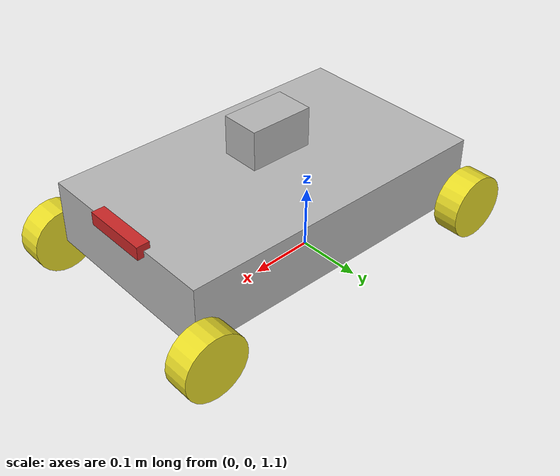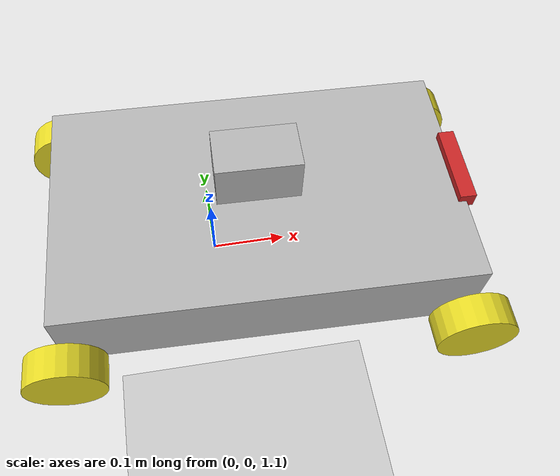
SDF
<sdf version="1.7">
 <world name="default">
  <model name="ground_plane">
   <static>1</static>
   <link name="link">
    <collision name="collision">
     <geometry><plane><normal>0 0 1</normal><size>100 100</size></plane></geometry>
     <surface>
      <contact><collide_bitmask>65535</collide_bitmask></contact>
      <friction><ode><mu>100</mu><mu2>50</mu2></ode></friction>
     </surface>
    </collision>
    <visual name="visual">
     <cast_shadows>0</cast_shadows>
     <geometry><plane><normal>0 0 1</normal><size>100 100</size></plane></geometry>
     <material>
      <script><uri>file://media/materials/scripts/gazebo.material</uri><name>Gazebo/Grey</name></script>
     </material>
    </visual>
   </link>
  </model>
  <gravity>0 0 -9.8</gravity>
  <magnetic_field>6e-06 2.3e-05 -4.2e-05</magnetic_field>
  <atmosphere type="adiabatic"/>
  <physics type="ode">
   <max_step_size>0.001</max_step_size>
   <real_time_factor>1</real_time_factor>
   <real_time_update_rate>1000</real_time_update_rate>
  </physics>
  <scene><ambient>0.4 0.4 0.4 1</ambient><background>0.7 0.7 0.7 1</background><shadows>1</shadows></scene>
  <audio><device>default</device></audio>
  <spherical_coordinates>
   <surface_model>EARTH_WGS84</surface_model>
   <latitude_deg>0</latitude_deg>
   <longitude_deg>0</longitude_deg>
   <elevation>0</elevation>
   <heading_deg>0</heading_deg>
  </spherical_coordinates>
  <light name="user_directional_light_0" type="directional">
   <pose>5.92611 3.87759 1 0 -0 0</pose>
   <diffuse>0.5 0.5 0.5 1</diffuse>
   <specular>0.1 0.1 0.1 1</specular>
   <direction>0.1 0.1 -0.9</direction>
   <attenuation>
    <range>20</range>
    <constant>0.5</constant>
    <linear>0.01</linear>
    <quadratic>0.001</quadratic>
   </attenuation>
   <spot><inner_angle>0</inner_angle><outer_angle>0</outer_angle><falloff>0</falloff></spot>
  </light>
  <light name="user_point_light_0" type="point">
   <pose>7.74204 2.38082 1 0 -0 0</pose>
   <diffuse>0.5 0.5 0.5 1</diffuse>
   <specular>0.1 0.1 0.1 1</specular>
   <attenuation>
    <range>20</range>
    <constant>0.5</constant>
    <linear>0.01</linear>
    <quadratic>0.001</quadratic>
   </attenuation>
   <cast_shadows>0</cast_shadows>
   <direction>0 0 -1</direction>
   <spot><inner_angle>0</inner_angle><outer_angle>0</outer_angle><falloff>0</falloff></spot>
  </light>
  <light name="user_spot_light_0" type="spot">
   <pose>2.4624 1.17686 1 0 -0 0</pose>
   <diffuse>0.5 0.5 0.5 1</diffuse>
   <specular>0.1 0.1 0.1 1</specular>
   <direction>0 0 -1</direction>
   <attenuation>
    <range>20</range>
    <constant>0.5</constant>
    <linear>0.01</linear>
    <quadratic>0.001</quadratic>
   </attenuation>
   <cast_shadows>0</cast_shadows>
   <spot><inner_angle>0.6</inner_angle><outer_angle>1</outer_angle><falloff>1</falloff></spot>
  </light>
  <light name="user_spot_light_1" type="spot">
   <pose>12.1106 6.3566 1 0 -0 0</pose>
   <diffuse>0.5 0.5 0.5 1</diffuse>
   <specular>0.1 0.1 0.1 1</specular>
   <direction>0 0 -1</direction>
   <attenuation>
    <range>20</range>
    <constant>0.5</constant>
    <linear>0.01</linear>
    <quadratic>0.001</quadratic>
   </attenuation>
   <cast_shadows>0</cast_shadows>
   <spot><inner_angle>0.6</inner_angle><outer_angle>1</outer_angle><falloff>1</falloff></spot>
  </light>
  <light name="user_spot_light_2" type="spot">
   <pose>7.29605 3.79652 1 0 -0 0</pose>
   <diffuse>0.5 0.5 0.5 1</diffuse>
   <specular>0.1 0.1 0.1 1</specular>
   <direction>0 0 -1</direction>
   <attenuation>
    <range>20</range>
    <constant>0.5</constant>
    <linear>0.01</linear>
    <quadratic>0.001</quadratic>
   </attenuation>
   <cast_shadows>0</cast_shadows>
   <spot><inner_angle>0.6</inner_angle><outer_angle>1</outer_angle><falloff>1</falloff></spot>
  </light>
  <model name="robot">
   <link name="base_link">
    <inertial>
     <pose>0.02 0 0.0128 0 -0 0</pose>
     <mass>1.25</mass>
     <inertia>
      <ixx>0.0231319</ixx>
      <ixy>1.51081e-20</ixy>
      <ixz>-0.00093</ixz>
      <iyy>0.0353519</iyy>
      <iyz>4.27978e-36</iyz>
      <izz>0.0146167</izz>
     </inertia>
    </inertial>
    <collision name="base_link_collision"><geometry><box><size>0.5 0.3 0.1</size></box></geometry></collision>
    <collision name="base_link_fixed_joint_lump__camera_link_collision_1">
     <pose>0.25 0 0.05 0 -0 0</pose>
     <geometry><box><size>0.02 0.1 0.02</size></box></geometry>
    </collision>
    <collision name="base_link_fixed_joint_lump__imu_link_collision_2">
     <pose>0 0 0.02 0 -0 0</pose>
     <geometry><box><size>0.02 0.02 0.02</size></box></geometry>
    </collision>
    <visual name="base_link_visual"><geometry><box><size>0.5 0.3 0.1</size></box></geometry></visual>
    <visual name="base_link_fixed_joint_lump__camera_link_visual_1">
     <pose>0.25 0 0.05 0 -0 0</pose>
     <geometry><box><size>0.02 0.1 0.02</size></box></geometry>
     <material>
      <script><name>Gazebo/Red</name><uri>file://media/materials/scripts/gazebo.material</uri></script>
     </material>
    </visual>
    <visual name="base_link_fixed_joint_lump__imu_link_visual_2">
     <pose>0 0 0.02 0 -0 0</pose>
     <geometry><box><size>0.02 0.02 0.02</size></box></geometry>
     <material>
      <script><name>Gazebo/Black</name><uri>file://media/materials/scripts/gazebo.material</uri></script>
     </material>
    </visual>
    <visual name="base_link_fixed_joint_lump__livox_link_visual_3">
     <pose>0 0 0.1 0 -0 0</pose>
     <geometry><box><size>0.1 0.06 0.06</size></box></geometry>
    </visual>
    <sensor name="imu_sensor" type="imu">
     <plugin name="imu_plugin" filename="libgazebo_ros_imu_sensor.so">
      <ros><namespace>/</namespace><remapping>~/out:=imu_raw</remapping></ros>
      <initial_orientation_as_reference>0</initial_orientation_as_reference>
     </plugin>
     <update_rate>100</update_rate>
     <always_on>1</always_on>
     <imu>
      <angular_velocity>
       <x>
        <noise type="gaussian">
         <mean>0</mean>
         <stddev>0</stddev>
         <bias_mean>0</bias_mean>
         <bias_stddev>0</bias_stddev>
        </noise>
       </x>
       <y>
        <noise type="gaussian">
         <mean>0</mean>
         <stddev>0</stddev>
         <bias_mean>0</bias_mean>
         <bias_stddev>0</bias_stddev>
        </noise>
       </y>
       <z>
        <noise type="gaussian">
         <mean>0</mean>
         <stddev>0</stddev>
         <bias_mean>0</bias_mean>
         <bias_stddev>0</bias_stddev>
        </noise>
       </z>
      </angular_velocity>
      <linear_acceleration>
       <x>
        <noise type="gaussian">
         <mean>0</mean>
         <stddev>0</stddev>
         <bias_mean>0</bias_mean>
         <bias_stddev>0</bias_stddev>
        </noise>
       </x>
       <y>
        <noise type="gaussian">
         <mean>0</mean>
         <stddev>0</stddev>
         <bias_mean>0</bias_mean>
         <bias_stddev>0</bias_stddev>
        </noise>
       </y>
       <z>
        <noise type="gaussian">
         <mean>0</mean>
         <stddev>0</stddev>
         <bias_mean>0</bias_mean>
         <bias_stddev>0</bias_stddev>
        </noise>
       </z>
      </linear_acceleration>
     </imu>
     <pose>0 0 0.02 0 -0 0</pose>
    </sensor>
    <sensor name="livox_link" type="ray">
     <visualize>1</visualize>
     <update_rate>10</update_rate>
     <plugin name="livox_link_plugin" filename="libros2_livox.so">
      <ray>
       <scan>
        <horizontal>
         <samples>100</samples>
         <resolution>1</resolution>
         <min_angle>0</min_angle>
         <max_angle>6.2831852</max_angle>
        </horizontal>
        <vertical>
         <samples>360</samples>
         <resolution>1</resolution>
         <min_angle>-0.12601276984444446</min_angle>
         <max_angle>0.9637707965111111</max_angle>
        </vertical>
       </scan>
       <range><min>0.1</min><max>200.0</max><resolution>0.002</resolution></range>
       <noise><type>gaussian</type><mean>0.0</mean><stddev>0.002</stddev></noise>
      </ray>
      <visualize>0</visualize>
      <samples>30000</samples>
      <downsample>1</downsample>
      <csv_file_name>/home/akun/workspace/CAR/1_URDF_ws/install/ros2_livox_simulation/share/ros2_livox_simulation/scan_mode/mid360.csv</csv_file_name>
      <topic>livox</topic>
     </plugin>
     <pose>0 0 0.1 0 -0 0</pose>
     <ray>
      <scan>
       <horizontal>
        <samples>640</samples>
        <resolution>1</resolution>
        <min_angle>0</min_angle>
        <max_angle>0</max_angle>
       </horizontal>
       <vertical><samples>1</samples><min_angle>0</min_angle><max_angle>0</max_angle></vertical>
      </scan>
      <range><min>0</min><max>0</max></range>
     </ray>
    </sensor>
   </link>
   <joint name="wheel_1_joint" type="revolute">
    <pose relative_to="base_link">0.25 0.17 -0.05 0 -0 0</pose>
    <parent>base_link</parent>
    <child>wheel_1_link</child>
    <axis>
     <xyz>0 1 0</xyz>
     <limit><lower>-100</lower><upper>100</upper><effort>100</effort><velocity>10</velocity></limit>
     <dynamics><spring_reference>0</spring_reference><spring_stiffness>0</spring_stiffness></dynamics>
    </axis>
   </joint>
   <link name="wheel_1_link">
    <pose relative_to="wheel_1_joint">0 0 0 0 -0 0</pose>
    <inertial>
     <mass>0.05</mass>
     <inertia>
      <ixx>3.79167e-05</ixx>
      <ixy>0</ixy>
      <ixz>0</ixz>
      <iyy>3.79167e-05</iyy>
      <iyz>0</iyz>
      <izz>6.25e-05</izz>
     </inertia>
    </inertial>
    <collision name="wheel_1_link_collision">
     <pose>0 0 0 1.57079 -0 0</pose>
     <geometry><cylinder><length>0.04</length><radius>0.05</radius></cylinder></geometry>
     <surface>
      <contact><ode><kp>1e+09</kp><kd>1</kd></ode></contact>
      <friction><ode><mu>0</mu><mu2>0</mu2></ode></friction>
     </surface>
    </collision>
    <visual name="wheel_1_link_visual">
     <pose>0 0 0 1.57079 -0 0</pose>
     <geometry><cylinder><length>0.04</length><radius>0.05</radius></cylinder></geometry>
     <material>
      <script><name>Gazebo/Yellow</name><uri>file://media/materials/scripts/gazebo.material</uri></script>
     </material>
    </visual>
   </link>
   <joint name="wheel_2_joint" type="revolute">
    <pose relative_to="base_link">-0.25 0.17 -0.05 0 -0 0</pose>
    <parent>base_link</parent>
    <child>wheel_2_link</child>
    <axis>
     <xyz>0 1 0</xyz>
     <limit><effort>100</effort><velocity>10</velocity><lower>-1e+16</lower><upper>1e+16</upper></limit>
     <dynamics><spring_reference>0</spring_reference><spring_stiffness>0</spring_stiffness></dynamics>
    </axis>
   </joint>
   <link name="wheel_2_link">
    <pose relative_to="wheel_2_joint">0 0 0 0 -0 0</pose>
    <inertial>
     <mass>0.05</mass>
     <inertia>
      <ixx>3.79167e-05</ixx>
      <ixy>0</ixy>
      <ixz>0</ixz>
      <iyy>3.79167e-05</iyy>
      <iyz>0</iyz>
      <izz>6.25e-05</izz>
     </inertia>
    </inertial>
    <collision name="wheel_2_link_collision">
     <pose>0 0 0 1.57079 -0 0</pose>
     <geometry><cylinder><length>0.04</length><radius>0.05</radius></cylinder></geometry>
     <surface>
      <contact><ode><kp>1e+09</kp><kd>1</kd></ode></contact>
      <friction><ode><mu>5</mu><mu2>5</mu2></ode></friction>
     </surface>
    </collision>
    <visual name="wheel_2_link_visual">
     <pose>0 0 0 1.57079 -0 0</pose>
     <geometry><cylinder><length>0.04</length><radius>0.05</radius></cylinder></geometry>
     <material>
      <script><name>Gazebo/Yellow</name><uri>file://media/materials/scripts/gazebo.material</uri></script>
     </material>
    </visual>
   </link>
   <joint name="wheel_3_joint" type="revolute">
    <pose relative_to="base_link">0.25 -0.17 -0.05 0 -0 0</pose>
    <parent>base_link</parent>
    <child>wheel_3_link</child>
    <axis>
     <xyz>0 1 0</xyz>
     <limit><lower>-100</lower><upper>100</upper><effort>100</effort><velocity>10</velocity></limit>
     <dynamics><spring_reference>0</spring_reference><spring_stiffness>0</spring_stiffness></dynamics>
    </axis>
   </joint>
   <link name="wheel_3_link">
    <pose relative_to="wheel_3_joint">0 0 0 0 -0 0</pose>
    <inertial>
     <mass>0.05</mass>
     <inertia>
      <ixx>3.79167e-05</ixx>
      <ixy>0</ixy>
      <ixz>0</ixz>
      <iyy>3.79167e-05</iyy>
      <iyz>0</iyz>
      <izz>6.25e-05</izz>
     </inertia>
    </inertial>
    <collision name="wheel_3_link_collision">
     <pose>0 0 0 1.57079 -0 0</pose>
     <geometry><cylinder><length>0.04</length><radius>0.05</radius></cylinder></geometry>
     <surface>
      <contact><ode><kp>1e+09</kp><kd>1</kd></ode></contact>
      <friction><ode><mu>0</mu><mu2>0</mu2></ode></friction>
     </surface>
    </collision>
    <visual name="wheel_3_link_visual">
     <pose>0 0 0 1.57079 -0 0</pose>
     <geometry><cylinder><length>0.04</length><radius>0.05</radius></cylinder></geometry>
     <material>
      <script><name>Gazebo/Yellow</name><uri>file://media/materials/scripts/gazebo.material</uri></script>
     </material>
    </visual>
   </link>
   <joint name="wheel_4_joint" type="revolute">
    <pose relative_to="base_link">-0.25 -0.17 -0.05 0 -0 0</pose>
    <parent>base_link</parent>
    <child>wheel_4_link</child>
    <axis>
     <xyz>0 1 0</xyz>
     <limit><effort>100</effort><velocity>10</velocity><lower>-1e+16</lower><upper>1e+16</upper></limit>
     <dynamics><spring_reference>0</spring_reference><spring_stiffness>0</spring_stiffness></dynamics>
    </axis>
   </joint>
   <link name="wheel_4_link">
    <pose relative_to="wheel_4_joint">0 0 0 0 -0 0</pose>
    <inertial>
     <mass>0.05</mass>
     <inertia>
      <ixx>3.79167e-05</ixx>
      <ixy>0</ixy>
      <ixz>0</ixz>
      <iyy>3.79167e-05</iyy>
      <iyz>0</iyz>
      <izz>6.25e-05</izz>
     </inertia>
    </inertial>
    <collision name="wheel_4_link_collision">
     <pose>0 0 0 1.57079 -0 0</pose>
     <geometry><cylinder><length>0.04</length><radius>0.05</radius></cylinder></geometry>
     <surface>
      <contact><ode><kp>1e+09</kp><kd>1</kd></ode></contact>
      <friction><ode><mu>5</mu><mu2>5</mu2></ode></friction>
     </surface>
    </collision>
    <visual name="wheel_4_link_visual">
     <pose>0 0 0 1.57079 -0 0</pose>
     <geometry><cylinder><length>0.04</length><radius>0.05</radius></cylinder></geometry>
     <material>
      <script><name>Gazebo/Yellow</name><uri>file://media/materials/scripts/gazebo.material</uri></script>
     </material>
    </visual>
   </link>
   <static>0</static>
   <plugin name="diff_drive" filename="libgazebo_ros_diff_drive.so">
    <ros><namespace>/</namespace><remapping>cmd_vel:=cmd_vel</remapping><remapping>odom:=odom</remapping></ros>
    <update_rate>30</update_rate>
    <left_joint>wheel_2_joint</left_joint>
    <right_joint>wheel_4_joint</right_joint>
    <wheel_separation>0.3</wheel_separation>
    <wheel_diameter>0.10</wheel_diameter>
    <max_wheel_torque>1000</max_wheel_torque>
    <max_wheel_acceleration>5.0</max_wheel_acceleration>
    <publish_odom>1</publish_odom>
    <publish_odom_tf>1</publish_odom_tf>
    <publish_wheel_tf>1</publish_wheel_tf>
    <odometry_frame>odom</odometry_frame>
    <robot_base_frame>base_link</robot_base_frame>
   </plugin>
   <pose>0.056593 -0.023909 1.21501 0.000281 0.002019 -0.028304</pose>
  </model>
 </world>
</sdf>
